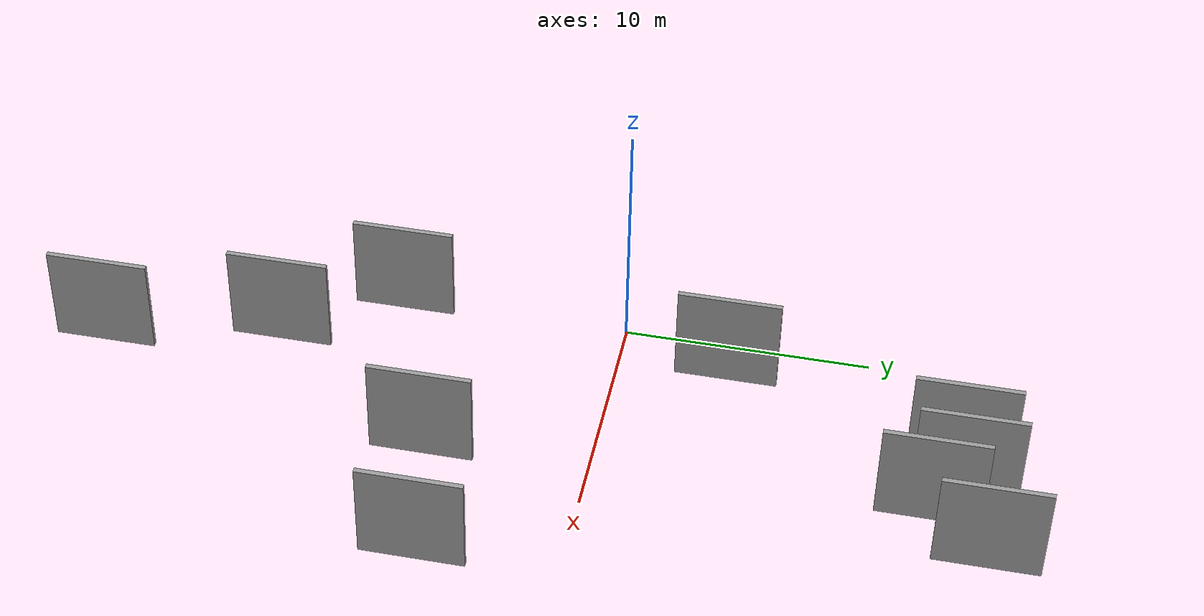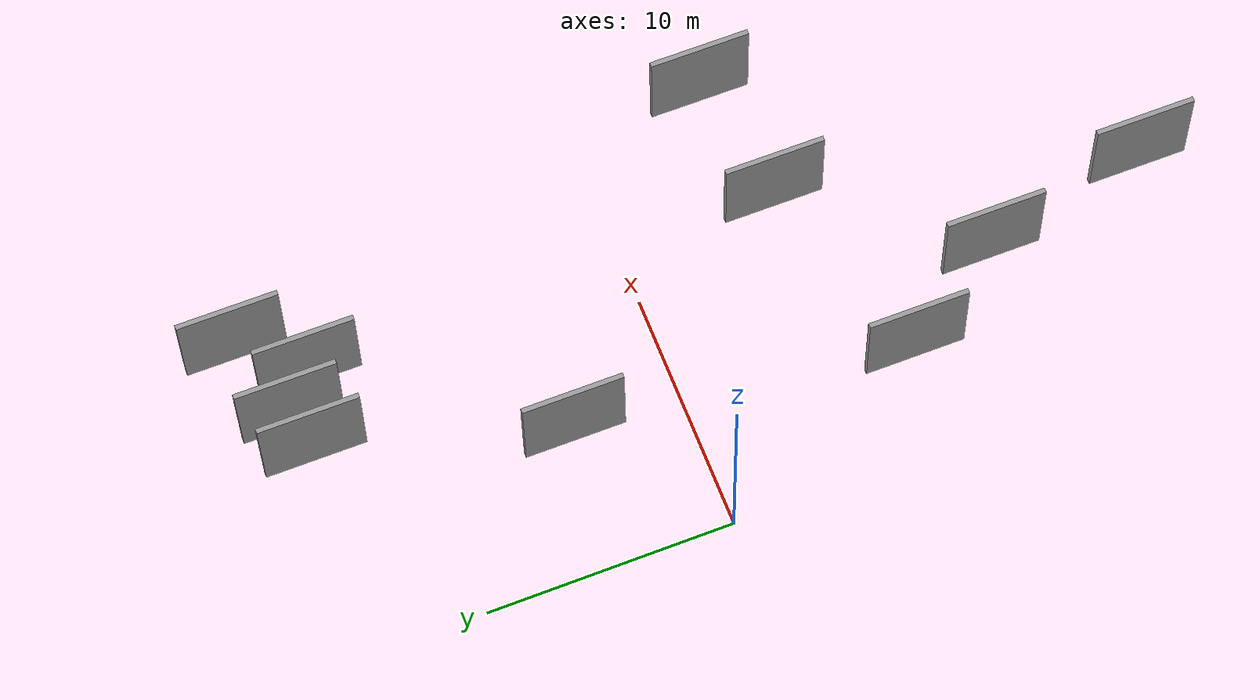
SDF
<sdf version="1.6">
 <world name="default">
  <scene>
   <sky><clouds><speed>12</speed></clouds></sky>
   <ambient>0.4 0.4 0.4 1</ambient>
   <background>0.7 0.7 0.7 1</background>
   <shadows>1</shadows>
  </scene>
  <gravity>0 0 -9.8066</gravity>
  <magnetic_field>6e-06 2.3e-05 -4.2e-05</magnetic_field>
  <physics default="0" name="default_physics" type="ode">
   <ode>
    <solver>
     <type>quick</type>
     <iters>10</iters>
     <sor>1.0</sor>
     <use_dynamic_moi_rescaling>0</use_dynamic_moi_rescaling>
    </solver>
    <constraints>
     <cfm>0</cfm>
     <erp>0.2</erp>
     <contact_max_correcting_vel>100</contact_max_correcting_vel>
     <contact_surface_layer>0.001</contact_surface_layer>
    </constraints>
   </ode>
   <max_step_size>0.004</max_step_size>
   <real_time_factor>1</real_time_factor>
   <real_time_update_rate>250</real_time_update_rate>
  </physics>
  <light name="sun" type="directional">
   <pose>0 0 10 0 0 0</pose>
   <diffuse>0.8 0.8 0.8 1</diffuse>
   <specular>0.2 0.2 0.2 1</specular>
   <attenuation>
    <range>1000</range>
    <constant>0.9</constant>
    <linear>0.01</linear>
    <quadratic>0.001</quadratic>
   </attenuation>
   <direction>-0.5 0.1 -0.9</direction>
  </light>
  <model name="grey_wall_1">
   <static>1</static>
   <pose>10.9394 -5.9173 2.5 0.000000 0.000000 1.570796</pose>
   <link name="link">
    <pose>0 0 2.00 0 0 0</pose>
    <collision name="collision"><geometry><box><size>4.00 0.2 4.00</size></box></geometry></collision>
    <visual name="visual">
     <cast_shadows>0</cast_shadows>
     <geometry><box><size>4.00 0.2 4.00</size></box></geometry>
     <material>
      <script>
       <uri>model://grey_wall/materials/scripts</uri>
       <uri>model://grey_wall/materials/textures</uri>
       <name>vrc/grey_wall</name>
      </script>
     </material>
    </visual>
   </link>
  </model>
  <model name="grey_wall_2">
   <static>1</static>
   <pose>7.3684 -19.6241 2.5 0.000000 0.000000 1.570796</pose>
   <link name="link">
    <pose>0 0 2.00 0 0 0</pose>
    <collision name="collision"><geometry><box><size>4.00 0.2 4.00</size></box></geometry></collision>
    <visual name="visual">
     <cast_shadows>0</cast_shadows>
     <geometry><box><size>4.00 0.2 4.00</size></box></geometry>
     <material>
      <script>
       <uri>model://grey_wall/materials/scripts</uri>
       <uri>model://grey_wall/materials/textures</uri>
       <name>vrc/grey_wall</name>
      </script>
     </material>
    </visual>
   </link>
  </model>
  <model name="grey_wall_3">
   <static>1</static>
   <pose>12.3538 15.4275 2.5 0.000000 0.000000 1.570796</pose>
   <link name="link">
    <pose>0 0 2.00 0 0 0</pose>
    <collision name="collision"><geometry><box><size>4.00 0.2 4.00</size></box></geometry></collision>
    <visual name="visual">
     <cast_shadows>0</cast_shadows>
     <geometry><box><size>4.00 0.2 4.00</size></box></geometry>
     <material>
      <script>
       <uri>model://grey_wall/materials/scripts</uri>
       <uri>model://grey_wall/materials/textures</uri>
       <name>vrc/grey_wall</name>
      </script>
     </material>
    </visual>
   </link>
  </model>
  <model name="grey_wall_4">
   <static>1</static>
   <pose>8.8984 14.3432 2.5 0.000000 0.000000 1.570796</pose>
   <link name="link">
    <pose>0 0 2.00 0 0 0</pose>
    <collision name="collision"><geometry><box><size>4.00 0.2 4.00</size></box></geometry></collision>
    <visual name="visual">
     <cast_shadows>0</cast_shadows>
     <geometry><box><size>4.00 0.2 4.00</size></box></geometry>
     <material>
      <script>
       <uri>model://grey_wall/materials/scripts</uri>
       <uri>model://grey_wall/materials/textures</uri>
       <name>vrc/grey_wall</name>
      </script>
     </material>
    </visual>
   </link>
  </model>
  <model name="grey_wall_5">
   <static>1</static>
   <pose>16.2719 -4.9557 2.5 0.000000 0.000000 1.570796</pose>
   <link name="link">
    <pose>0 0 2.00 0 0 0</pose>
    <collision name="collision"><geometry><box><size>4.00 0.2 4.00</size></box></geometry></collision>
    <visual name="visual">
     <cast_shadows>0</cast_shadows>
     <geometry><box><size>4.00 0.2 4.00</size></box></geometry>
     <material>
      <script>
       <uri>model://grey_wall/materials/scripts</uri>
       <uri>model://grey_wall/materials/textures</uri>
       <name>vrc/grey_wall</name>
      </script>
     </material>
    </visual>
   </link>
  </model>
  <model name="grey_wall_6">
   <static>1</static>
   <pose>5.8461 -12.8332 2.5 0.000000 0.000000 1.570796</pose>
   <link name="link">
    <pose>0 0 2.00 0 0 0</pose>
    <collision name="collision"><geometry><box><size>4.00 0.2 4.00</size></box></geometry></collision>
    <visual name="visual">
     <cast_shadows>0</cast_shadows>
     <geometry><box><size>4.00 0.2 4.00</size></box></geometry>
     <material>
      <script>
       <uri>model://grey_wall/materials/scripts</uri>
       <uri>model://grey_wall/materials/textures</uri>
       <name>vrc/grey_wall</name>
      </script>
     </material>
    </visual>
   </link>
  </model>
  <model name="grey_wall_7">
   <static>1</static>
   <pose>7.2881 14.0125 2.5 0.000000 0.000000 1.570796</pose>
   <link name="link">
    <pose>0 0 2.00 0 0 0</pose>
    <collision name="collision"><geometry><box><size>4.00 0.2 4.00</size></box></geometry></collision>
    <visual name="visual">
     <cast_shadows>0</cast_shadows>
     <geometry><box><size>4.00 0.2 4.00</size></box></geometry>
     <material>
      <script>
       <uri>model://grey_wall/materials/scripts</uri>
       <uri>model://grey_wall/materials/textures</uri>
       <name>vrc/grey_wall</name>
      </script>
     </material>
    </visual>
   </link>
  </model>
  <model name="grey_wall_8">
   <static>1</static>
   <pose>10.3584 13.1377 2.5 0.000000 0.000000 1.570796</pose>
   <link name="link">
    <pose>0 0 2.00 0 0 0</pose>
    <collision name="collision"><geometry><box><size>4.00 0.2 4.00</size></box></geometry></collision>
    <visual name="visual">
     <cast_shadows>0</cast_shadows>
     <geometry><box><size>4.00 0.2 4.00</size></box></geometry>
     <material>
      <script>
       <uri>model://grey_wall/materials/scripts</uri>
       <uri>model://grey_wall/materials/textures</uri>
       <name>vrc/grey_wall</name>
      </script>
     </material>
    </visual>
   </link>
  </model>
  <model name="grey_wall_9">
   <static>1</static>
   <pose>4.4963 4.6857 2.5 0.000000 0.000000 1.570796</pose>
   <link name="link">
    <pose>0 0 2.00 0 0 0</pose>
    <collision name="collision"><geometry><box><size>4.00 0.2 4.00</size></box></geometry></collision>
    <visual name="visual">
     <cast_shadows>0</cast_shadows>
     <geometry><box><size>4.00 0.2 4.00</size></box></geometry>
     <material>
      <script>
       <uri>model://grey_wall/materials/scripts</uri>
       <uri>model://grey_wall/materials/textures</uri>
       <name>vrc/grey_wall</name>
      </script>
     </material>
    </visual>
   </link>
  </model>
  <model name="grey_wall_10">
   <static>1</static>
   <pose>3.0323 -8.5098 2.5 0.000000 0.000000 1.570796</pose>
   <link name="link">
    <pose>0 0 2.00 0 0 0</pose>
    <collision name="collision"><geometry><box><size>4.00 0.2 4.00</size></box></geometry></collision>
    <visual name="visual">
     <cast_shadows>0</cast_shadows>
     <geometry><box><size>4.00 0.2 4.00</size></box></geometry>
     <material>
      <script>
       <uri>model://grey_wall/materials/scripts</uri>
       <uri>model://grey_wall/materials/textures</uri>
       <name>vrc/grey_wall</name>
      </script>
     </material>
    </visual>
   </link>
  </model>
 </world>
</sdf>
